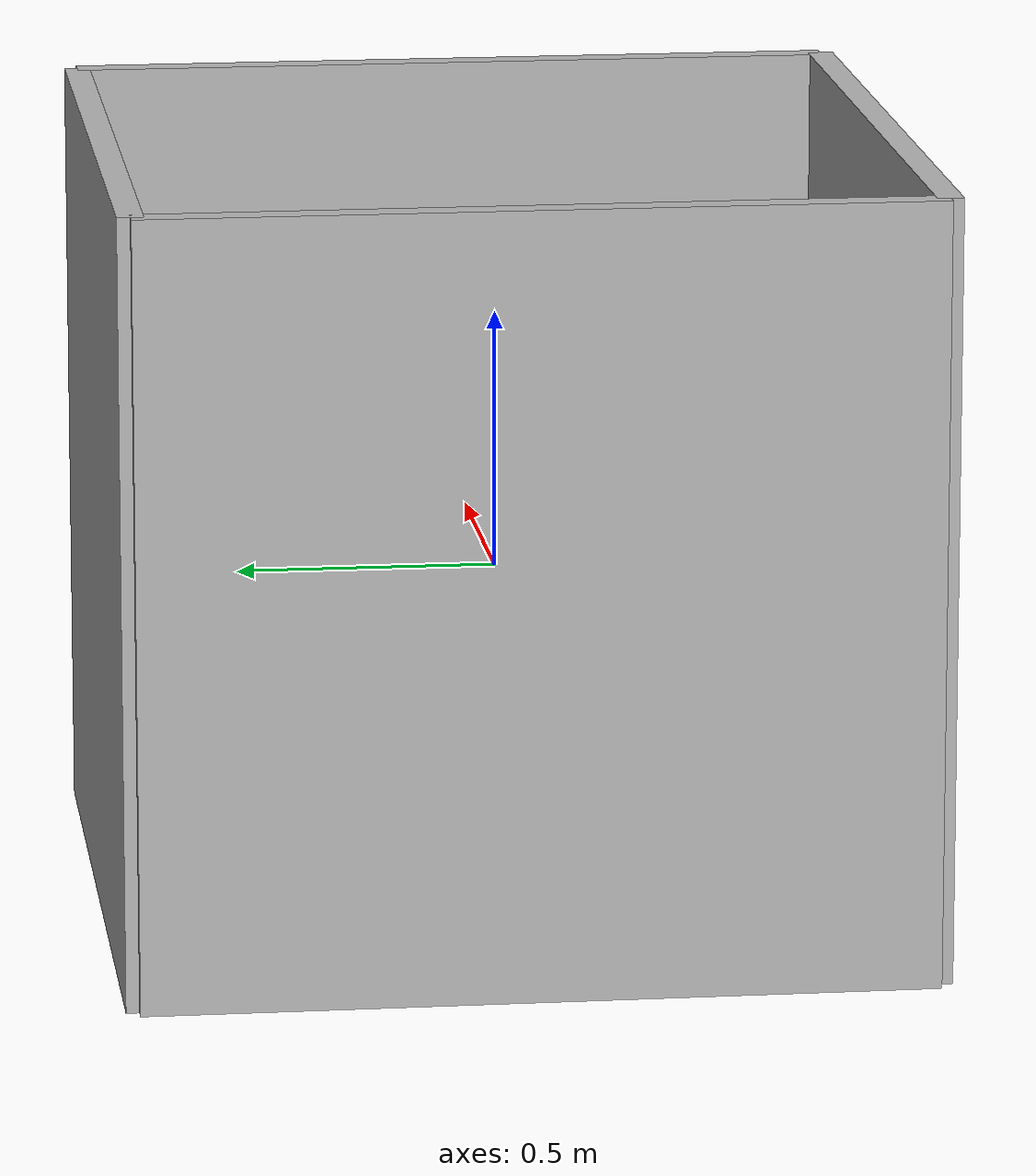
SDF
<?xml version="1.0"?>
<sdf version="1.7">
  <model name="cargo-space">
    <!--
    Axes:
      +X - Pointing towards front (slope)
      +Y - Pointing to left side
      +Z - Up
    Origin:
      (0, 0, 0) at the center bottom of the bin
    -->
    <link name="cargo-space">
      <inertial>
        <mass>18.70</mass>
        <inertia>
          <ixx>0.79</ixx>
          <ixy>0</ixy>
          <ixz>0</ixz>
          <iyy>0.53</iyy>
          <iyz>0</iyz>
          <izz>1.2</izz>
        </inertia>
      </inertial>
      <visual name="visual">
        <pose>0.75 0 0.105 0 0 0</pose>
        <geometry>
          <box>
            <size>0.05 1.5 1.5</size>
          </box>
        </geometry>
      </visual>
      <collision name="front">
        <pose>0.75 0 0.105 0 0 0</pose>
        <geometry>
          <box>
            <size>0.05 1.5 1.5</size>
          </box>
        </geometry>
      </collision>

      <visual name="back">
        <pose>-0.75 0 0.105 0 0 0</pose>
        <geometry>
          <box>
            <size>0.05 1.5 1.5</size>
          </box>
        </geometry>
      </visual>
      <collision name="back">
        <pose>-0.75 0 0.105 0 0 0</pose>
        <geometry>
          <box>
            <size>0.05 1.5 1.5</size>
          </box>
        </geometry>
      </collision>
      <visual name="left">
        <pose>0 0.75 0.105 0 0 0</pose>
        <geometry>
          <box>
            <size>1.5 0.05 1.5</size>
          </box>
        </geometry>
      </visual>
      <collision name="left">
        <pose>0 0.75 0.105 0 0 0</pose>
        <geometry>
          <box>
            <size>1.5 0.05 1.5</size>
          </box>
        </geometry>
      </collision>
      <visual name="right">
        <pose>0 -0.75 0.105 0 0 0</pose>
        <geometry>
          <box>
            <size>1.5 0.05 1.5</size>
          </box>
        </geometry>
      </visual>
      <collision name="right">
        <pose>0 -0.75 0.105 0 0 0</pose>
        <geometry>
          <box>
            <size>1.5 0.05 1.5</size>
          </box>
        </geometry>
      </collision>
      <visual name="bottom">
        <pose>0.0 0.0 -0.50 0 0 0</pose>
        <geometry>
          <box>
            <size>1.5 1.5 0.010</size>
          </box>
        </geometry>
      </visual>
      <collision name="bottom">
        <pose>0.0 0.0 -0.50 0 0 0</pose>
        <geometry>
          <box>
            <size>1.5 1.5 0.010</size>
          </box>
        </geometry>
      </collision>
    </link>
  </model>
</sdf>
